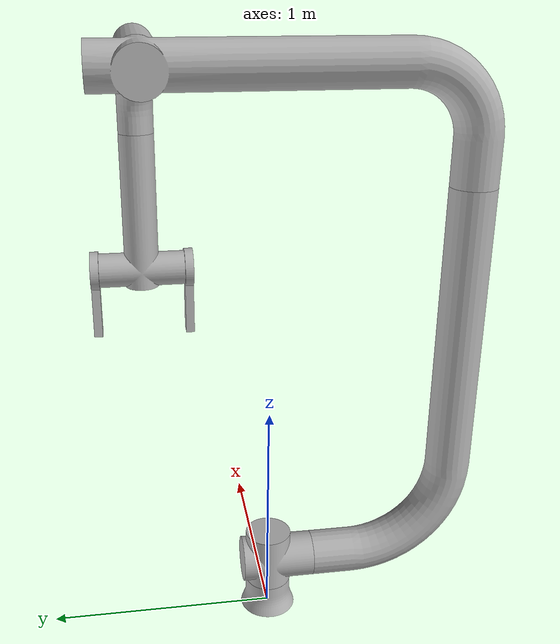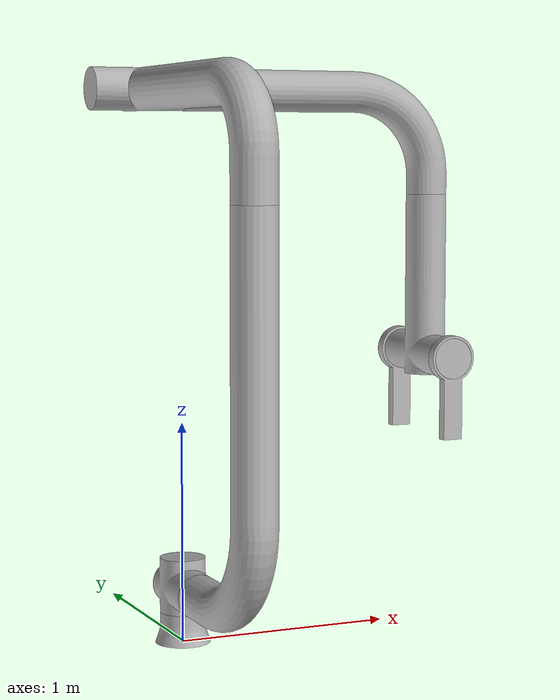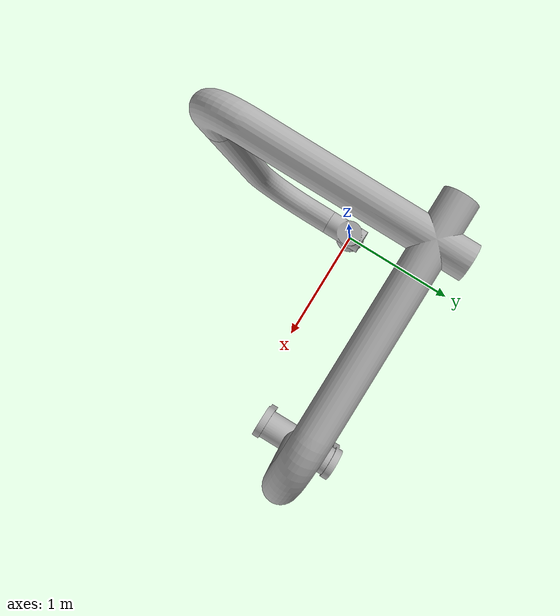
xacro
<?xml version="1.0" ?>
<robot name="gripper" xmlns:xacro="http://www.ros.org/wiki/xacro">

<xacro:include filename="$(find gripper_description)/urdf/materials.xacro" />
<xacro:include filename="$(find gripper_description)/urdf/gripper.trans" />
<xacro:include filename="$(find gripper_description)/urdf/gripper.gazebo" />
<link name="base_link">
  <inertial>
    <origin xyz="2.8209367364389976e-17 2.8209367364389976e-17 0.0655204703606238" rpy="0 0 0"/>
    <mass value="40.49453965666771"/>
    <inertia ixx="0.189643" iyy="0.189643" izz="0.241337" ixy="0.0" iyz="-0.0" ixz="-0.0"/>
  </inertial>
  <visual>
    <origin xyz="0 0 0" rpy="0 0 0"/>
    <geometry>
      <mesh filename="file://$(find gripper_description)/meshes/base_link.stl" scale="0.001 0.001 0.001"/>
    </geometry>
    <material name="silver"/>
  </visual>
  <collision>
    <origin xyz="0 0 0" rpy="0 0 0"/>
    <geometry>
      <mesh filename="file://$(find gripper_description)/meshes/base_link.stl" scale="0.001 0.001 0.001"/>
    </geometry>
  </collision>
</link>

<link name="link_1_1">
  <inertial>
    <origin xyz="-1.0626822522341908e-07 -0.03196383547512522 0.11965281220416402" rpy="0 0 0"/>
    <mass value="101.9608025793302"/>
    <inertia ixx="1.214351" iyy="0.716346" izz="1.067994" ixy="0.0" iyz="-0.031459" ixz="-0.0"/>
  </inertial>
  <visual>
    <origin xyz="-0.0 -0.0 -0.14" rpy="0 0 0"/>
    <geometry>
      <mesh filename="file://$(find gripper_description)/meshes/link_1_1.stl" scale="0.001 0.001 0.001"/>
    </geometry>
    <material name="silver"/>
  </visual>
  <collision>
    <origin xyz="-0.0 -0.0 -0.14" rpy="0 0 0"/>
    <geometry>
      <mesh filename="file://$(find gripper_description)/meshes/link_1_1.stl" scale="0.001 0.001 0.001"/>
    </geometry>
  </collision>
</link>

<link name="link_2_1">
  <inertial>
    <origin xyz="-3.039724348907032e-17 -0.5422713840062632 0.7020311891791742" rpy="0 0 0"/>
    <mass value="542.067445003661"/>
    <inertia ixx="191.921272" iyy="175.496332" izz="19.135277" ixy="0.0" iyz="36.18432" ixz="0.0"/>
  </inertial>
  <visual>
    <origin xyz="0.0 0.203162 -0.25" rpy="0 0 0"/>
    <geometry>
      <mesh filename="file://$(find gripper_description)/meshes/link_2_1.stl" scale="0.001 0.001 0.001"/>
    </geometry>
    <material name="silver"/>
  </visual>
  <collision>
    <origin xyz="0.0 0.203162 -0.25" rpy="0 0 0"/>
    <geometry>
      <mesh filename="file://$(find gripper_description)/meshes/link_2_1.stl" scale="0.001 0.001 0.001"/>
    </geometry>
  </collision>
</link>

<link name="link_3_1">
  <inertial>
    <origin xyz="-0.005099475880255106 0.7203043648549206 0.44279061211828274" rpy="0 0 0"/>
    <mass value="544.0596401178934"/>
    <inertia ixx="162.380353" iyy="12.681066" izz="155.706636" ixy="1.755569" iyz="-22.652414" ixz="0.163053"/>
  </inertial>
  <visual>
    <origin xyz="0.0 0.844334 -2.0" rpy="0 0 0"/>
    <geometry>
      <mesh filename="file://$(find gripper_description)/meshes/link_3_1.stl" scale="0.001 0.001 0.001"/>
    </geometry>
    <material name="silver"/>
  </visual>
  <collision>
    <origin xyz="0.0 0.844334 -2.0" rpy="0 0 0"/>
    <geometry>
      <mesh filename="file://$(find gripper_description)/meshes/link_3_1.stl" scale="0.001 0.001 0.001"/>
    </geometry>
  </collision>
</link>

<link name="link_4_1">
  <inertial>
    <origin xyz="0.7756385828817449 3.8587399053824356e-07 -0.08218778179147135" rpy="0 0 0"/>
    <mass value="401.5678124039017"/>
    <inertia ixx="9.570595" iyy="79.268364" izz="71.705608" ixy="0.0" iyz="-0.0" ixz="16.311849"/>
  </inertial>
  <visual>
    <origin xyz="-0.2 -0.50874 -2.501561" rpy="0 0 0"/>
    <geometry>
      <mesh filename="file://$(find gripper_description)/meshes/link_4_1.stl" scale="0.001 0.001 0.001"/>
    </geometry>
    <material name="silver"/>
  </visual>
  <collision>
    <origin xyz="-0.2 -0.50874 -2.501561" rpy="0 0 0"/>
    <geometry>
      <mesh filename="file://$(find gripper_description)/meshes/link_4_1.stl" scale="0.001 0.001 0.001"/>
    </geometry>
  </collision>
</link>

<link name="link_5_1">
  <inertial>
    <origin xyz="6.661338147750939e-16 3.8587399076028817e-07 -0.5631999790577207" rpy="0 0 0"/>
    <mass value="328.0558682935313"/>
    <inertia ixx="28.916225" iyy="24.874988" izz="5.723383" ixy="0.0" iyz="0.0" ixz="0.0"/>
  </inertial>
  <visual>
    <origin xyz="-1.5 -0.50874 -2.001561" rpy="0 0 0"/>
    <geometry>
      <mesh filename="file://$(find gripper_description)/meshes/link_5_1.stl" scale="0.001 0.001 0.001"/>
    </geometry>
    <material name="silver"/>
  </visual>
  <collision>
    <origin xyz="-1.5 -0.50874 -2.001561" rpy="0 0 0"/>
    <geometry>
      <mesh filename="file://$(find gripper_description)/meshes/link_5_1.stl" scale="0.001 0.001 0.001"/>
    </geometry>
  </collision>
</link>

<link name="gripper_1_1">
  <inertial>
    <origin xyz="9.663985989960544e-05 -0.02499961412600893 -0.19821221148670154" rpy="0 0 0"/>
    <mass value="14.76876662204653"/>
    <inertia ixx="0.268784" iyy="0.293985" izz="0.031356" ixy="0.0" iyz="0.0" ixz="7.5e-05"/>
  </inertial>
  <visual>
    <origin xyz="-1.5 -0.80874 -1.201561" rpy="0 0 0"/>
    <geometry>
      <mesh filename="file://$(find gripper_description)/meshes/gripper_1_1.stl" scale="0.001 0.001 0.001"/>
    </geometry>
    <material name="silver"/>
  </visual>
  <collision>
    <origin xyz="-1.5 -0.80874 -1.201561" rpy="0 0 0"/>
    <geometry>
      <mesh filename="file://$(find gripper_description)/meshes/gripper_1_1.stl" scale="0.001 0.001 0.001"/>
    </geometry>
  </collision>
</link>

<link name="gripper_2_1">
  <inertial>
    <origin xyz="0.00030584017110868444 0.02500038587399067 -0.1977854865724591" rpy="0 0 0"/>
    <mass value="14.64998651636769"/>
    <inertia ixx="0.267537" iyy="0.292469" izz="0.031036" ixy="0.0" iyz="0.0" ixz="0.000238"/>
  </inertial>
  <visual>
    <origin xyz="-1.5 -0.20874 -1.201561" rpy="0 0 0"/>
    <geometry>
      <mesh filename="file://$(find gripper_description)/meshes/gripper_2_1.stl" scale="0.001 0.001 0.001"/>
    </geometry>
    <material name="silver"/>
  </visual>
  <collision>
    <origin xyz="-1.5 -0.20874 -1.201561" rpy="0 0 0"/>
    <geometry>
      <mesh filename="file://$(find gripper_description)/meshes/gripper_2_1.stl" scale="0.001 0.001 0.001"/>
    </geometry>
  </collision>
</link>

<joint name="joint_1" type="continuous">
  <origin xyz="0.0 0.0 0.14" rpy="0 0 0"/>
  <parent link="base_link"/>
  <child link="link_1_1"/>
  <axis xyz="0.0 0.0 1.0"/>
</joint>

<joint name="joint_2" type="revolute">
  <origin xyz="-0.0 -0.203162 0.11" rpy="0 0 0"/>
  <parent link="link_1_1"/>
  <child link="link_2_1"/>
  <axis xyz="-0.0 -1.0 0.0"/>
  <limit upper="1.570796" lower="-1.570796" effort="100" velocity="100"/>
</joint>

<joint name="joint_3" type="continuous">
  <origin xyz="0.0 -0.641172 1.75" rpy="0 0 0"/>
  <parent link="link_2_1"/>
  <child link="link_3_1"/>
  <axis xyz="0.0 0.0 -1.0"/>
</joint>

<joint name="joint_4" type="continuous">
  <origin xyz="0.2 1.353074 0.501561" rpy="0 0 0"/>
  <parent link="link_3_1"/>
  <child link="link_4_1"/>
  <axis xyz="1.0 -0.0 0.0"/>
</joint>

<joint name="joint_5" type="continuous">
  <origin xyz="1.3 0.0 -0.5" rpy="0 0 0"/>
  <parent link="link_4_1"/>
  <child link="link_5_1"/>
  <axis xyz="0.0 0.0 -1.0"/>
</joint>

<joint name="gripper_joint_1" type="prismatic">
  <origin xyz="0.0 0.3 -0.8" rpy="0 0 0"/>
  <parent link="link_5_1"/>
  <child link="gripper_1_1"/>
  <axis xyz="-0.0 1.0 0.0"/>
  <limit upper="0.0" lower="-0.125" effort="100" velocity="100"/>
</joint>

<joint name="gripper_joint_2" type="prismatic">
  <origin xyz="0.0 -0.3 -0.8" rpy="0 0 0"/>
  <parent link="link_5_1"/>
  <child link="gripper_2_1"/>
  <axis xyz="0.0 -1.0 -0.0"/>
  <limit upper="0.0" lower="-0.125" effort="100" velocity="100"/>
</joint>

</robot>

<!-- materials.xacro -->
<robot name="Gripper" xmlns:xacro="http://www.ros.org/wiki/xacro" >

<material name="silver">
  <color rgba="0.700 0.700 0.700 1.000"/>
</material>

</robot>

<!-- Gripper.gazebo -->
<robot name="gripper" xmlns:xacro="http://www.ros.org/wiki/xacro" >

<xacro:property name="body_color" value="Gazebo/Silver" />

<gazebo>
  <plugin name="control" filename="libgazebo_ros_control.so"/>
</gazebo>
<gazebo reference="base_link">
  <material>${body_color}</material>
  <mu1>0.2</mu1>
  <mu2>0.2</mu2>
  <self_collide>true</self_collide>
  <gravity>true</gravity>
</gazebo>

<gazebo reference="link_1_1">
  <material>${body_color}</material>
  <mu1>0.2</mu1>
  <mu2>0.2</mu2>
  <self_collide>true</self_collide>
</gazebo>

<gazebo reference="link_2_1">
  <material>${body_color}</material>
  <mu1>0.2</mu1>
  <mu2>0.2</mu2>
  <self_collide>true</self_collide>
</gazebo>

<gazebo reference="link_3_1">
  <material>${body_color}</material>
  <mu1>0.2</mu1>
  <mu2>0.2</mu2>
  <self_collide>true</self_collide>
</gazebo>

<gazebo reference="link_4_1">
  <material>${body_color}</material>
  <mu1>0.2</mu1>
  <mu2>0.2</mu2>
  <self_collide>true</self_collide>
</gazebo>

<gazebo reference="link_5_1">
  <material>${body_color}</material>
  <mu1>0.2</mu1>
  <mu2>0.2</mu2>
  <self_collide>true</self_collide>
</gazebo>

<gazebo reference="gripper_1_1">
  <material>${body_color}</material>
  <mu1>0.2</mu1>
  <mu2>0.2</mu2>
  <self_collide>true</self_collide>
</gazebo>

<gazebo reference="gripper_2_1">
  <material>${body_color}</material>
  <mu1>0.2</mu1>
  <mu2>0.2</mu2>
  <self_collide>true</self_collide>
</gazebo>

</robot>
